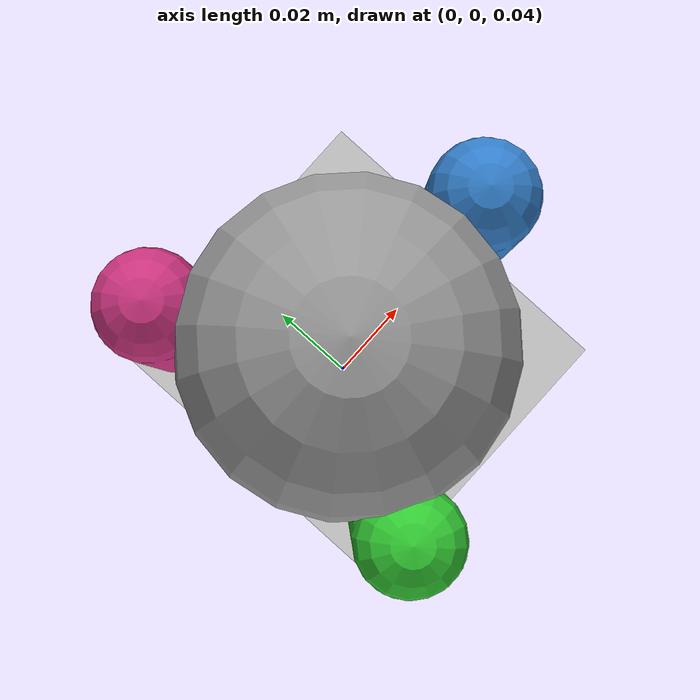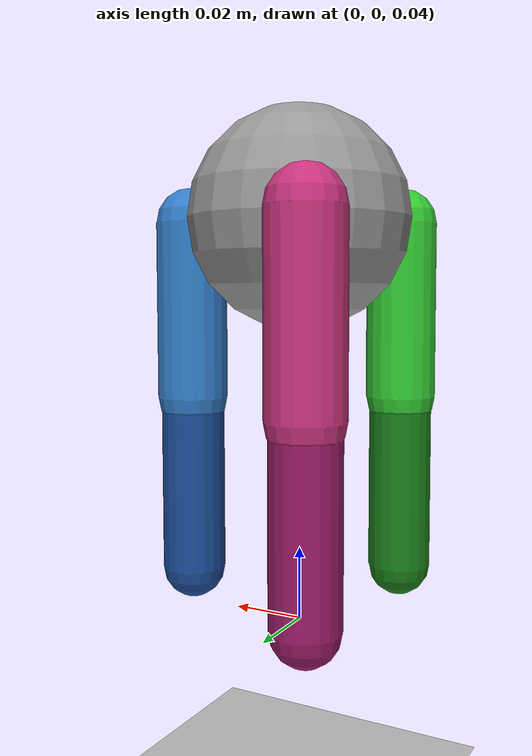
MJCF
<mujoco model="tripod_robot">
  <compiler angle="degree" coordinate="local"/>
  <option gravity="0 0 -9.81" integrator="Euler" timestep="0.01"/>

<default>
  <geom friction="0.1 0.005 0.005"
        density="500"
        condim="3"
        margin="0.002"/>
    <joint armature="0.01" damping="1" limited="true"/>
</default>

<visual>
  <map znear="0.01" zfar="100"/>
</visual>
  <worldbody>

  <geom name="floor"
        type="plane"
        pos="0 0 -0.01"
        size="0 0 1"
        friction="1.0 0.5 0.5"
        rgba="0.8 0.8 0.8 1"/>
    <!-- Cuerpo central -->
    <body name="torso" pos="0 0 0.15">

      <joint name="root_free" type="free"/>

      <geom type="sphere" size="0.03" density="500" rgba="0.6 0.6 0.6 1" condim="3"/>

      <!-- Pierna 1 -->
      <body name="leg1" pos="0.035 0 0">
        <joint name="hip1" type="hinge" axis="0 1 0" limited="true" range="-30 30" />
        <geom type="capsule" fromto="0 0 0 0 0 -0.05" density="500" size="0.01" rgba="0.2 0.5 0.8 1"/>
        <body name="leg1_lower" pos="0 0 -0.05">
          <joint name="knee1" type="hinge" axis="0 1 0" limited="true" range="0 45" />
          <geom type="capsule" fromto="0 0 0 0 0 -0.05" density="500" size="0.009" rgba="0.1 0.3 0.6 1" friction="2.0 1.0 0.1"/>
        </body>
      </body>

      <!-- Pierna 2 (rotada 120°) -->
      <body name="leg2" pos="-0.0175 0.03 0" euler="0 0 120">
        <joint name="hip2" type="hinge" axis="0 1 0" limited="true" range="-30 30" />
        <geom type="capsule" fromto="0 0 0 0 0 -0.05" density="500" size="0.01" rgba="0.8 0.2 0.5 1"/>
        <body name="leg2_lower" pos="0 0 -0.05">
          <joint name="knee2" type="hinge" axis="0 1 0" limited="true" range="0 45" />
          <geom type="capsule" fromto="0 0 0 0 0 -0.05" density="500" size="0.009" rgba="0.6 0.1 0.4 1" friction="2.0 1.0 0.1"/>
        </body>
      </body>

      <!-- Pierna 3 (rotada -120°) -->
      <body name="leg3" pos="-0.0175 -0.03 0" euler="0 0 -120">
        <joint name="hip3" type="hinge" axis="0 1 0" limited="true" range="-30 30"/>
        <geom type="capsule" fromto="0 0 0 0 0 -0.05" density="500" size="0.01" rgba="0.2 0.8 0.2 1"/>
        <body name="leg3_lower" pos="0 0 -0.05">
          <joint name="knee3" type="hinge" axis="0 1 0" limited="true" range="0 45"/>
          <geom type="capsule" fromto="0 0 0 0 0 -0.05" density="500" size="0.009" rgba="0.1 0.5 0.1 1" friction="2.0 1.0 0.1"/>
        </body>
      </body>
    </body>
  </worldbody>

  <actuator>
    <!-- Caderas -->
    <position name="hip1_servo" joint="hip1" kp="50" ctrlrange="-50 -10"/>
    <position name="hip2_servo" joint="hip2" kp="50" ctrlrange="-50 -10"/>
    <position name="hip3_servo" joint="hip3" kp="50" ctrlrange="-50 -10"/>

    <!-- Rodillas -->
    <position name="knee1_servo" joint="knee1" kp="30" ctrlrange="0 30"/>
    <position name="knee2_servo" joint="knee2" kp="30" ctrlrange="0 30"/>
    <position name="knee3_servo" joint="knee3" kp="30" ctrlrange="0 30"/>
  </actuator>
</mujoco>
